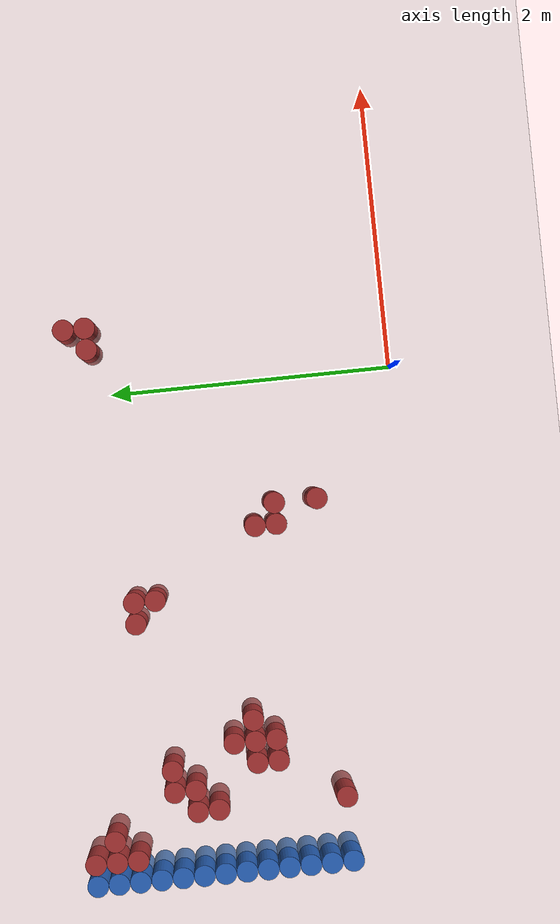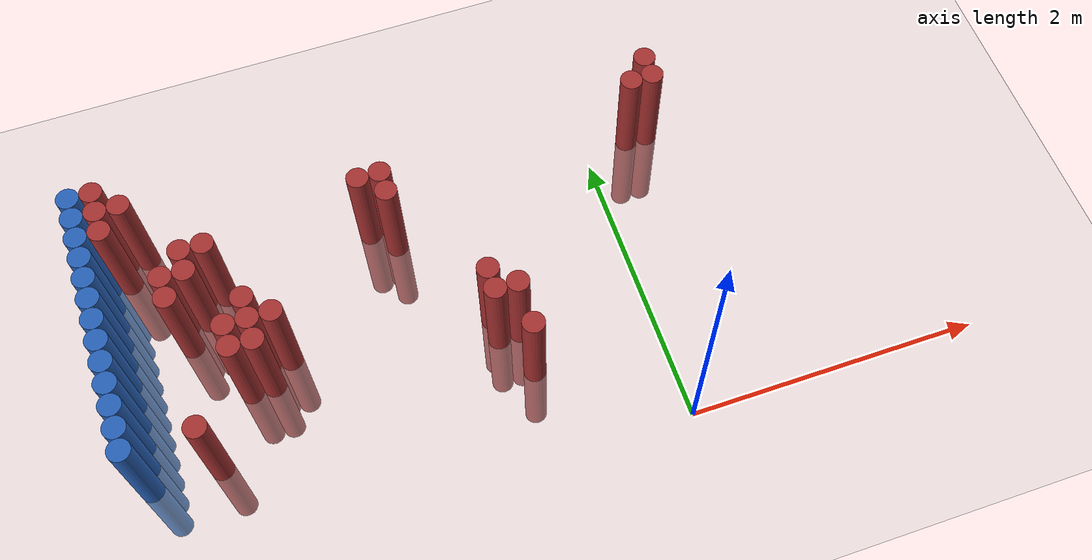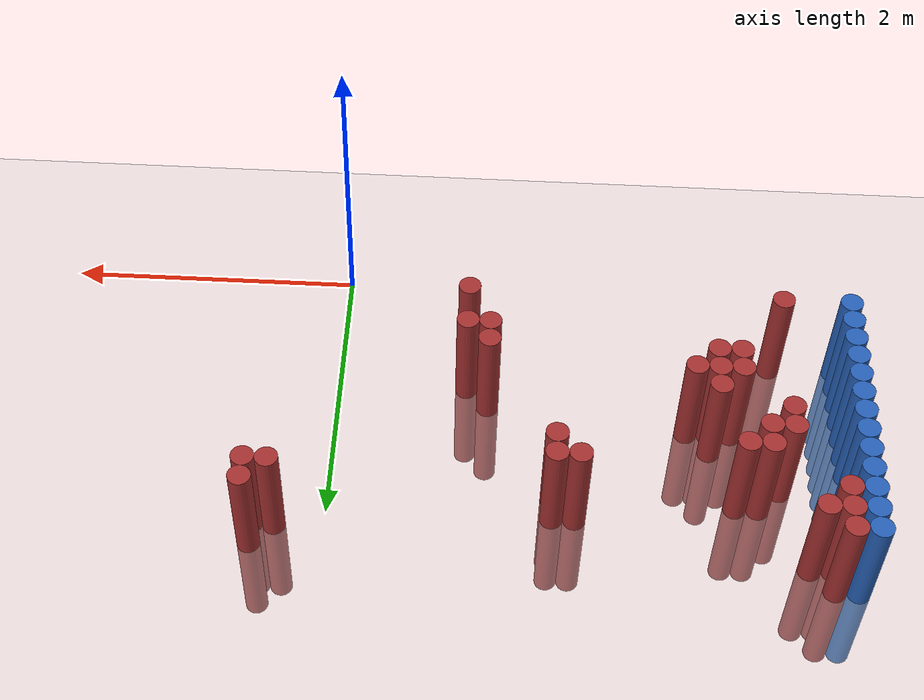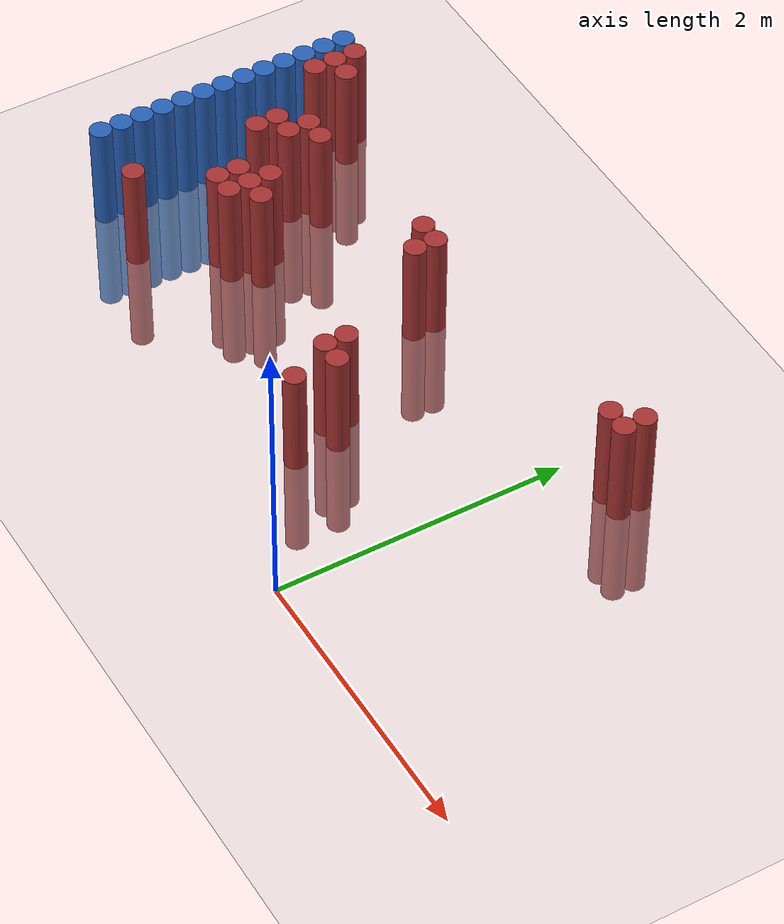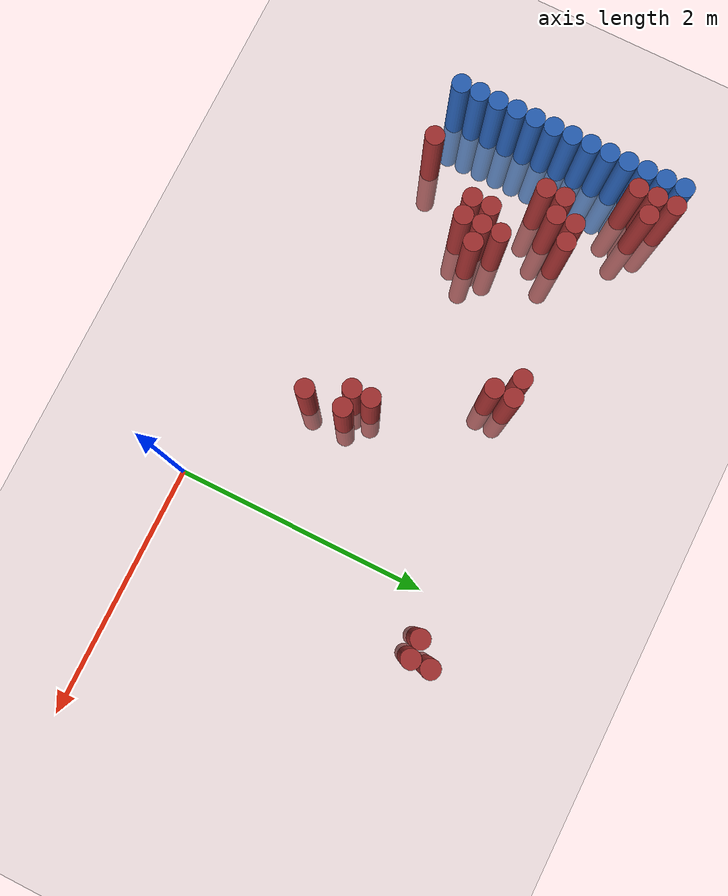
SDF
<sdf version="1.6">
 <world name="default">
  <model name="ground_plane">
   <static>1</static>
   <link name="link">
    <collision name="collision">
     <geometry><plane><normal>0 0 1</normal><size>100 100</size></plane></geometry>
     <surface><friction><ode><mu>100</mu><mu2>50</mu2></ode></friction></surface>
    </collision>
    <visual name="visual">
     <cast_shadows>0</cast_shadows>
     <geometry><plane><normal>0 0 1</normal><size>100 100</size></plane></geometry>
     <material>
      <script><uri>file://media/materials/scripts/gazebo.material</uri><name>Gazebo/Grey</name></script>
     </material>
    </visual>
   </link>
  </model>
  <model name="unit_cylinder_125">
   <static>1</static>
   <pose>-3.425000 0.775000 0.000000 0.000000 0.000000 0.000000</pose>
   <link name="link">
    <inertial>
     <mass>1</mass>
     <inertia><ixx>0.145833</ixx><ixy>0</ixy><ixz>0</ixz><iyy>0.145833</iyy><iyz>0</iyz><izz>0.125</izz></inertia>
    </inertial>
    <collision name="collision">
     <geometry><cylinder><radius>0.075000</radius><length>1.5</length></cylinder></geometry>
    </collision>
    <visual name="visual">
     <geometry><cylinder><radius>0.075000</radius><length>1.5</length></cylinder></geometry>
     <material>
      <ambient>0.152000 0.379000 0.720000 1</ambient>
      <diffuse>0.152000 0.379000 0.720000 1</diffuse>
     </material>
     <material>
      <script><name>Gazebo/Grey</name><uri>file://media/materials/scripts/gazebo.material</uri></script>
     </material>
    </visual>
   </link>
  </model>
  <model name="unit_cylinder_127">
   <static>1</static>
   <pose>-3.425000 0.925000 0.000000 0.000000 0.000000 0.000000</pose>
   <link name="link">
    <inertial>
     <mass>1</mass>
     <inertia><ixx>0.145833</ixx><ixy>0</ixy><ixz>0</ixz><iyy>0.145833</iyy><iyz>0</iyz><izz>0.125</izz></inertia>
    </inertial>
    <collision name="collision">
     <geometry><cylinder><radius>0.075000</radius><length>1.5</length></cylinder></geometry>
    </collision>
    <visual name="visual">
     <geometry><cylinder><radius>0.075000</radius><length>1.5</length></cylinder></geometry>
     <material>
      <ambient>0.152000 0.379000 0.720000 1</ambient>
      <diffuse>0.152000 0.379000 0.720000 1</diffuse>
     </material>
     <material>
      <script><name>Gazebo/Grey</name><uri>file://media/materials/scripts/gazebo.material</uri></script>
     </material>
    </visual>
   </link>
  </model>
  <model name="unit_cylinder_129">
   <static>1</static>
   <pose>-3.425000 1.075000 0.000000 0.000000 0.000000 0.000000</pose>
   <link name="link">
    <inertial>
     <mass>1</mass>
     <inertia><ixx>0.145833</ixx><ixy>0</ixy><ixz>0</ixz><iyy>0.145833</iyy><iyz>0</iyz><izz>0.125</izz></inertia>
    </inertial>
    <collision name="collision">
     <geometry><cylinder><radius>0.075000</radius><length>1.5</length></cylinder></geometry>
    </collision>
    <visual name="visual">
     <geometry><cylinder><radius>0.075000</radius><length>1.5</length></cylinder></geometry>
     <material>
      <ambient>0.152000 0.379000 0.720000 1</ambient>
      <diffuse>0.152000 0.379000 0.720000 1</diffuse>
     </material>
     <material>
      <script><name>Gazebo/Grey</name><uri>file://media/materials/scripts/gazebo.material</uri></script>
     </material>
    </visual>
   </link>
  </model>
  <model name="unit_cylinder_131">
   <static>1</static>
   <pose>-3.425000 1.225000 0.000000 0.000000 0.000000 0.000000</pose>
   <link name="link">
    <inertial>
     <mass>1</mass>
     <inertia><ixx>0.145833</ixx><ixy>0</ixy><ixz>0</ixz><iyy>0.145833</iyy><iyz>0</iyz><izz>0.125</izz></inertia>
    </inertial>
    <collision name="collision">
     <geometry><cylinder><radius>0.075000</radius><length>1.5</length></cylinder></geometry>
    </collision>
    <visual name="visual">
     <geometry><cylinder><radius>0.075000</radius><length>1.5</length></cylinder></geometry>
     <material>
      <ambient>0.152000 0.379000 0.720000 1</ambient>
      <diffuse>0.152000 0.379000 0.720000 1</diffuse>
     </material>
     <material>
      <script><name>Gazebo/Grey</name><uri>file://media/materials/scripts/gazebo.material</uri></script>
     </material>
    </visual>
   </link>
  </model>
  <model name="unit_cylinder_133">
   <static>1</static>
   <pose>-3.425000 1.375000 0.000000 0.000000 0.000000 0.000000</pose>
   <link name="link">
    <inertial>
     <mass>1</mass>
     <inertia><ixx>0.145833</ixx><ixy>0</ixy><ixz>0</ixz><iyy>0.145833</iyy><iyz>0</iyz><izz>0.125</izz></inertia>
    </inertial>
    <collision name="collision">
     <geometry><cylinder><radius>0.075000</radius><length>1.5</length></cylinder></geometry>
    </collision>
    <visual name="visual">
     <geometry><cylinder><radius>0.075000</radius><length>1.5</length></cylinder></geometry>
     <material>
      <ambient>0.152000 0.379000 0.720000 1</ambient>
      <diffuse>0.152000 0.379000 0.720000 1</diffuse>
     </material>
     <material>
      <script><name>Gazebo/Grey</name><uri>file://media/materials/scripts/gazebo.material</uri></script>
     </material>
    </visual>
   </link>
  </model>
  <model name="unit_cylinder_135">
   <static>1</static>
   <pose>-3.425000 1.525000 0.000000 0.000000 0.000000 0.000000</pose>
   <link name="link">
    <inertial>
     <mass>1</mass>
     <inertia><ixx>0.145833</ixx><ixy>0</ixy><ixz>0</ixz><iyy>0.145833</iyy><iyz>0</iyz><izz>0.125</izz></inertia>
    </inertial>
    <collision name="collision">
     <geometry><cylinder><radius>0.075000</radius><length>1.5</length></cylinder></geometry>
    </collision>
    <visual name="visual">
     <geometry><cylinder><radius>0.075000</radius><length>1.5</length></cylinder></geometry>
     <material>
      <ambient>0.152000 0.379000 0.720000 1</ambient>
      <diffuse>0.152000 0.379000 0.720000 1</diffuse>
     </material>
     <material>
      <script><name>Gazebo/Grey</name><uri>file://media/materials/scripts/gazebo.material</uri></script>
     </material>
    </visual>
   </link>
  </model>
  <model name="unit_cylinder_137">
   <static>1</static>
   <pose>-3.425000 1.675000 0.000000 0.000000 0.000000 0.000000</pose>
   <link name="link">
    <inertial>
     <mass>1</mass>
     <inertia><ixx>0.145833</ixx><ixy>0</ixy><ixz>0</ixz><iyy>0.145833</iyy><iyz>0</iyz><izz>0.125</izz></inertia>
    </inertial>
    <collision name="collision">
     <geometry><cylinder><radius>0.075000</radius><length>1.5</length></cylinder></geometry>
    </collision>
    <visual name="visual">
     <geometry><cylinder><radius>0.075000</radius><length>1.5</length></cylinder></geometry>
     <material>
      <ambient>0.152000 0.379000 0.720000 1</ambient>
      <diffuse>0.152000 0.379000 0.720000 1</diffuse>
     </material>
     <material>
      <script><name>Gazebo/Grey</name><uri>file://media/materials/scripts/gazebo.material</uri></script>
     </material>
    </visual>
   </link>
  </model>
  <model name="unit_cylinder_139">
   <static>1</static>
   <pose>-3.425000 1.825000 0.000000 0.000000 0.000000 0.000000</pose>
   <link name="link">
    <inertial>
     <mass>1</mass>
     <inertia><ixx>0.145833</ixx><ixy>0</ixy><ixz>0</ixz><iyy>0.145833</iyy><iyz>0</iyz><izz>0.125</izz></inertia>
    </inertial>
    <collision name="collision">
     <geometry><cylinder><radius>0.075000</radius><length>1.5</length></cylinder></geometry>
    </collision>
    <visual name="visual">
     <geometry><cylinder><radius>0.075000</radius><length>1.5</length></cylinder></geometry>
     <material>
      <ambient>0.152000 0.379000 0.720000 1</ambient>
      <diffuse>0.152000 0.379000 0.720000 1</diffuse>
     </material>
     <material>
      <script><name>Gazebo/Grey</name><uri>file://media/materials/scripts/gazebo.material</uri></script>
     </material>
    </visual>
   </link>
  </model>
  <model name="unit_cylinder_141">
   <static>1</static>
   <pose>-3.425000 1.975000 0.000000 0.000000 0.000000 0.000000</pose>
   <link name="link">
    <inertial>
     <mass>1</mass>
     <inertia><ixx>0.145833</ixx><ixy>0</ixy><ixz>0</ixz><iyy>0.145833</iyy><iyz>0</iyz><izz>0.125</izz></inertia>
    </inertial>
    <collision name="collision">
     <geometry><cylinder><radius>0.075000</radius><length>1.5</length></cylinder></geometry>
    </collision>
    <visual name="visual">
     <geometry><cylinder><radius>0.075000</radius><length>1.5</length></cylinder></geometry>
     <material>
      <ambient>0.152000 0.379000 0.720000 1</ambient>
      <diffuse>0.152000 0.379000 0.720000 1</diffuse>
     </material>
     <material>
      <script><name>Gazebo/Grey</name><uri>file://media/materials/scripts/gazebo.material</uri></script>
     </material>
    </visual>
   </link>
  </model>
  <model name="unit_cylinder_143">
   <static>1</static>
   <pose>-3.425000 2.125000 0.000000 0.000000 0.000000 0.000000</pose>
   <link name="link">
    <inertial>
     <mass>1</mass>
     <inertia><ixx>0.145833</ixx><ixy>0</ixy><ixz>0</ixz><iyy>0.145833</iyy><iyz>0</iyz><izz>0.125</izz></inertia>
    </inertial>
    <collision name="collision">
     <geometry><cylinder><radius>0.075000</radius><length>1.5</length></cylinder></geometry>
    </collision>
    <visual name="visual">
     <geometry><cylinder><radius>0.075000</radius><length>1.5</length></cylinder></geometry>
     <material>
      <ambient>0.152000 0.379000 0.720000 1</ambient>
      <diffuse>0.152000 0.379000 0.720000 1</diffuse>
     </material>
     <material>
      <script><name>Gazebo/Grey</name><uri>file://media/materials/scripts/gazebo.material</uri></script>
     </material>
    </visual>
   </link>
  </model>
  <model name="unit_cylinder_145">
   <static>1</static>
   <pose>-3.425000 2.275000 0.000000 0.000000 0.000000 0.000000</pose>
   <link name="link">
    <inertial>
     <mass>1</mass>
     <inertia><ixx>0.145833</ixx><ixy>0</ixy><ixz>0</ixz><iyy>0.145833</iyy><iyz>0</iyz><izz>0.125</izz></inertia>
    </inertial>
    <collision name="collision">
     <geometry><cylinder><radius>0.075000</radius><length>1.5</length></cylinder></geometry>
    </collision>
    <visual name="visual">
     <geometry><cylinder><radius>0.075000</radius><length>1.5</length></cylinder></geometry>
     <material>
      <ambient>0.152000 0.379000 0.720000 1</ambient>
      <diffuse>0.152000 0.379000 0.720000 1</diffuse>
     </material>
     <material>
      <script><name>Gazebo/Grey</name><uri>file://media/materials/scripts/gazebo.material</uri></script>
     </material>
    </visual>
   </link>
  </model>
  <model name="unit_cylinder_147">
   <static>1</static>
   <pose>-3.425000 2.425000 0.000000 0.000000 0.000000 0.000000</pose>
   <link name="link">
    <inertial>
     <mass>1</mass>
     <inertia><ixx>0.145833</ixx><ixy>0</ixy><ixz>0</ixz><iyy>0.145833</iyy><iyz>0</iyz><izz>0.125</izz></inertia>
    </inertial>
    <collision name="collision">
     <geometry><cylinder><radius>0.075000</radius><length>1.5</length></cylinder></geometry>
    </collision>
    <visual name="visual">
     <geometry><cylinder><radius>0.075000</radius><length>1.5</length></cylinder></geometry>
     <material>
      <ambient>0.152000 0.379000 0.720000 1</ambient>
      <diffuse>0.152000 0.379000 0.720000 1</diffuse>
     </material>
     <material>
      <script><name>Gazebo/Grey</name><uri>file://media/materials/scripts/gazebo.material</uri></script>
     </material>
    </visual>
   </link>
  </model>
  <model name="unit_cylinder_225">
   <static>1</static>
   <pose>-3.425000 0.625000 0.000000 0.000000 0.000000 0.000000</pose>
   <link name="link">
    <inertial>
     <mass>1</mass>
     <inertia><ixx>0.145833</ixx><ixy>0</ixy><ixz>0</ixz><iyy>0.145833</iyy><iyz>0</iyz><izz>0.125</izz></inertia>
    </inertial>
    <collision name="collision">
     <geometry><cylinder><radius>0.075000</radius><length>1.5</length></cylinder></geometry>
    </collision>
    <visual name="visual">
     <geometry><cylinder><radius>0.075000</radius><length>1.5</length></cylinder></geometry>
     <material>
      <ambient>0.152000 0.379000 0.720000 1</ambient>
      <diffuse>0.152000 0.379000 0.720000 1</diffuse>
     </material>
     <material>
      <script><name>Gazebo/Grey</name><uri>file://media/materials/scripts/gazebo.material</uri></script>
     </material>
    </visual>
   </link>
  </model>
  <model name="unit_cylinder_226">
   <static>1</static>
   <pose>-3.425000 0.775000 0.000000 0.000000 0.000000 0.000000</pose>
   <link name="link">
    <inertial>
     <mass>1</mass>
     <inertia><ixx>0.145833</ixx><ixy>0</ixy><ixz>0</ixz><iyy>0.145833</iyy><iyz>0</iyz><izz>0.125</izz></inertia>
    </inertial>
    <collision name="collision">
     <geometry><cylinder><radius>0.075000</radius><length>1.5</length></cylinder></geometry>
    </collision>
    <visual name="visual">
     <geometry><cylinder><radius>0.075000</radius><length>1.5</length></cylinder></geometry>
     <material>
      <ambient>0.152000 0.379000 0.720000 1</ambient>
      <diffuse>0.152000 0.379000 0.720000 1</diffuse>
     </material>
     <material>
      <script><name>Gazebo/Grey</name><uri>file://media/materials/scripts/gazebo.material</uri></script>
     </material>
    </visual>
   </link>
  </model>
  <model name="unit_cylinder_227">
   <static>1</static>
   <pose>-3.425000 0.925000 0.000000 0.000000 0.000000 0.000000</pose>
   <link name="link">
    <inertial>
     <mass>1</mass>
     <inertia><ixx>0.145833</ixx><ixy>0</ixy><ixz>0</ixz><iyy>0.145833</iyy><iyz>0</iyz><izz>0.125</izz></inertia>
    </inertial>
    <collision name="collision">
     <geometry><cylinder><radius>0.075000</radius><length>1.5</length></cylinder></geometry>
    </collision>
    <visual name="visual">
     <geometry><cylinder><radius>0.075000</radius><length>1.5</length></cylinder></geometry>
     <material>
      <ambient>0.152000 0.379000 0.720000 1</ambient>
      <diffuse>0.152000 0.379000 0.720000 1</diffuse>
     </material>
     <material>
      <script><name>Gazebo/Grey</name><uri>file://media/materials/scripts/gazebo.material</uri></script>
     </material>
    </visual>
   </link>
  </model>
  <model name="unit_cylinder_228">
   <static>1</static>
   <pose>-3.425000 1.075000 0.000000 0.000000 0.000000 0.000000</pose>
   <link name="link">
    <inertial>
     <mass>1</mass>
     <inertia><ixx>0.145833</ixx><ixy>0</ixy><ixz>0</ixz><iyy>0.145833</iyy><iyz>0</iyz><izz>0.125</izz></inertia>
    </inertial>
    <collision name="collision">
     <geometry><cylinder><radius>0.075000</radius><length>1.5</length></cylinder></geometry>
    </collision>
    <visual name="visual">
     <geometry><cylinder><radius>0.075000</radius><length>1.5</length></cylinder></geometry>
     <material>
      <ambient>0.152000 0.379000 0.720000 1</ambient>
      <diffuse>0.152000 0.379000 0.720000 1</diffuse>
     </material>
     <material>
      <script><name>Gazebo/Grey</name><uri>file://media/materials/scripts/gazebo.material</uri></script>
     </material>
    </visual>
   </link>
  </model>
  <model name="unit_cylinder_229">
   <static>1</static>
   <pose>-3.425000 1.225000 0.000000 0.000000 0.000000 0.000000</pose>
   <link name="link">
    <inertial>
     <mass>1</mass>
     <inertia><ixx>0.145833</ixx><ixy>0</ixy><ixz>0</ixz><iyy>0.145833</iyy><iyz>0</iyz><izz>0.125</izz></inertia>
    </inertial>
    <collision name="collision">
     <geometry><cylinder><radius>0.075000</radius><length>1.5</length></cylinder></geometry>
    </collision>
    <visual name="visual">
     <geometry><cylinder><radius>0.075000</radius><length>1.5</length></cylinder></geometry>
     <material>
      <ambient>0.152000 0.379000 0.720000 1</ambient>
      <diffuse>0.152000 0.379000 0.720000 1</diffuse>
     </material>
     <material>
      <script><name>Gazebo/Grey</name><uri>file://media/materials/scripts/gazebo.material</uri></script>
     </material>
    </visual>
   </link>
  </model>
  <model name="unit_cylinder_230">
   <static>1</static>
   <pose>-3.425000 1.375000 0.000000 0.000000 0.000000 0.000000</pose>
   <link name="link">
    <inertial>
     <mass>1</mass>
     <inertia><ixx>0.145833</ixx><ixy>0</ixy><ixz>0</ixz><iyy>0.145833</iyy><iyz>0</iyz><izz>0.125</izz></inertia>
    </inertial>
    <collision name="collision">
     <geometry><cylinder><radius>0.075000</radius><length>1.5</length></cylinder></geometry>
    </collision>
    <visual name="visual">
     <geometry><cylinder><radius>0.075000</radius><length>1.5</length></cylinder></geometry>
     <material>
      <ambient>0.152000 0.379000 0.720000 1</ambient>
      <diffuse>0.152000 0.379000 0.720000 1</diffuse>
     </material>
     <material>
      <script><name>Gazebo/Grey</name><uri>file://media/materials/scripts/gazebo.material</uri></script>
     </material>
    </visual>
   </link>
  </model>
  <model name="unit_cylinder_231">
   <static>1</static>
   <pose>-3.425000 1.525000 0.000000 0.000000 0.000000 0.000000</pose>
   <link name="link">
    <inertial>
     <mass>1</mass>
     <inertia><ixx>0.145833</ixx><ixy>0</ixy><ixz>0</ixz><iyy>0.145833</iyy><iyz>0</iyz><izz>0.125</izz></inertia>
    </inertial>
    <collision name="collision">
     <geometry><cylinder><radius>0.075000</radius><length>1.5</length></cylinder></geometry>
    </collision>
    <visual name="visual">
     <geometry><cylinder><radius>0.075000</radius><length>1.5</length></cylinder></geometry>
     <material>
      <ambient>0.152000 0.379000 0.720000 1</ambient>
      <diffuse>0.152000 0.379000 0.720000 1</diffuse>
     </material>
     <material>
      <script><name>Gazebo/Grey</name><uri>file://media/materials/scripts/gazebo.material</uri></script>
     </material>
    </visual>
   </link>
  </model>
  <model name="unit_cylinder_232">
   <static>1</static>
   <pose>-3.425000 1.675000 0.000000 0.000000 0.000000 0.000000</pose>
   <link name="link">
    <inertial>
     <mass>1</mass>
     <inertia><ixx>0.145833</ixx><ixy>0</ixy><ixz>0</ixz><iyy>0.145833</iyy><iyz>0</iyz><izz>0.125</izz></inertia>
    </inertial>
    <collision name="collision">
     <geometry><cylinder><radius>0.075000</radius><length>1.5</length></cylinder></geometry>
    </collision>
    <visual name="visual">
     <geometry><cylinder><radius>0.075000</radius><length>1.5</length></cylinder></geometry>
     <material>
      <ambient>0.152000 0.379000 0.720000 1</ambient>
      <diffuse>0.152000 0.379000 0.720000 1</diffuse>
     </material>
     <material>
      <script><name>Gazebo/Grey</name><uri>file://media/materials/scripts/gazebo.material</uri></script>
     </material>
    </visual>
   </link>
  </model>
  <model name="unit_cylinder_233">
   <static>1</static>
   <pose>-3.425000 1.825000 0.000000 0.000000 0.000000 0.000000</pose>
   <link name="link">
    <inertial>
     <mass>1</mass>
     <inertia><ixx>0.145833</ixx><ixy>0</ixy><ixz>0</ixz><iyy>0.145833</iyy><iyz>0</iyz><izz>0.125</izz></inertia>
    </inertial>
    <collision name="collision">
     <geometry><cylinder><radius>0.075000</radius><length>1.5</length></cylinder></geometry>
    </collision>
    <visual name="visual">
     <geometry><cylinder><radius>0.075000</radius><length>1.5</length></cylinder></geometry>
     <material>
      <ambient>0.152000 0.379000 0.720000 1</ambient>
      <diffuse>0.152000 0.379000 0.720000 1</diffuse>
     </material>
     <material>
      <script><name>Gazebo/Grey</name><uri>file://media/materials/scripts/gazebo.material</uri></script>
     </material>
    </visual>
   </link>
  </model>
  <model name="unit_cylinder_234">
   <static>1</static>
   <pose>-3.425000 1.975000 0.000000 0.000000 0.000000 0.000000</pose>
   <link name="link">
    <inertial>
     <mass>1</mass>
     <inertia><ixx>0.145833</ixx><ixy>0</ixy><ixz>0</ixz><iyy>0.145833</iyy><iyz>0</iyz><izz>0.125</izz></inertia>
    </inertial>
    <collision name="collision">
     <geometry><cylinder><radius>0.075000</radius><length>1.5</length></cylinder></geometry>
    </collision>
    <visual name="visual">
     <geometry><cylinder><radius>0.075000</radius><length>1.5</length></cylinder></geometry>
     <material>
      <ambient>0.152000 0.379000 0.720000 1</ambient>
      <diffuse>0.152000 0.379000 0.720000 1</diffuse>
     </material>
     <material>
      <script><name>Gazebo/Grey</name><uri>file://media/materials/scripts/gazebo.material</uri></script>
     </material>
    </visual>
   </link>
  </model>
  <model name="unit_cylinder_235">
   <static>1</static>
   <pose>-3.425000 2.125000 0.000000 0.000000 0.000000 0.000000</pose>
   <link name="link">
    <inertial>
     <mass>1</mass>
     <inertia><ixx>0.145833</ixx><ixy>0</ixy><ixz>0</ixz><iyy>0.145833</iyy><iyz>0</iyz><izz>0.125</izz></inertia>
    </inertial>
    <collision name="collision">
     <geometry><cylinder><radius>0.075000</radius><length>1.5</length></cylinder></geometry>
    </collision>
    <visual name="visual">
     <geometry><cylinder><radius>0.075000</radius><length>1.5</length></cylinder></geometry>
     <material>
      <ambient>0.152000 0.379000 0.720000 1</ambient>
      <diffuse>0.152000 0.379000 0.720000 1</diffuse>
     </material>
     <material>
      <script><name>Gazebo/Grey</name><uri>file://media/materials/scripts/gazebo.material</uri></script>
     </material>
    </visual>
   </link>
  </model>
  <model name="unit_cylinder_236">
   <static>1</static>
   <pose>-3.425000 2.275000 0.000000 0.000000 0.000000 0.000000</pose>
   <link name="link">
    <inertial>
     <mass>1</mass>
     <inertia><ixx>0.145833</ixx><ixy>0</ixy><ixz>0</ixz><iyy>0.145833</iyy><iyz>0</iyz><izz>0.125</izz></inertia>
    </inertial>
    <collision name="collision">
     <geometry><cylinder><radius>0.075000</radius><length>1.5</length></cylinder></geometry>
    </collision>
    <visual name="visual">
     <geometry><cylinder><radius>0.075000</radius><length>1.5</length></cylinder></geometry>
     <material>
      <ambient>0.152000 0.379000 0.720000 1</ambient>
      <diffuse>0.152000 0.379000 0.720000 1</diffuse>
     </material>
     <material>
      <script><name>Gazebo/Grey</name><uri>file://media/materials/scripts/gazebo.material</uri></script>
     </material>
    </visual>
   </link>
  </model>
  <model name="unit_cylinder_237">
   <static>1</static>
   <pose>-3.425000 2.425000 0.000000 0.000000 0.000000 0.000000</pose>
   <link name="link">
    <inertial>
     <mass>1</mass>
     <inertia><ixx>0.145833</ixx><ixy>0</ixy><ixz>0</ixz><iyy>0.145833</iyy><iyz>0</iyz><izz>0.125</izz></inertia>
    </inertial>
    <collision name="collision">
     <geometry><cylinder><radius>0.075000</radius><length>1.5</length></cylinder></geometry>
    </collision>
    <visual name="visual">
     <geometry><cylinder><radius>0.075000</radius><length>1.5</length></cylinder></geometry>
     <material>
      <ambient>0.152000 0.379000 0.720000 1</ambient>
      <diffuse>0.152000 0.379000 0.720000 1</diffuse>
     </material>
     <material>
      <script><name>Gazebo/Grey</name><uri>file://media/materials/scripts/gazebo.material</uri></script>
     </material>
    </visual>
   </link>
  </model>
  <model name="unit_cylinder_264">
   <static>1</static>
   <pose>-3.275000 2.125000 0.000000 0.000000 0.000000 0.000000</pose>
   <link name="link">
    <inertial>
     <mass>1</mass>
     <inertia><ixx>0.145833</ixx><ixy>0</ixy><ixz>0</ixz><iyy>0.145833</iyy><iyz>0</iyz><izz>0.125</izz></inertia>
    </inertial>
    <collision name="collision">
     <geometry><cylinder><radius>0.075000</radius><length>1.5</length></cylinder></geometry>
    </collision>
    <visual name="visual">
     <geometry><cylinder><radius>0.075000</radius><length>1.5</length></cylinder></geometry>
     <material>
      <ambient>0.648000 0.192000 0.192000 1</ambient>
      <diffuse>0.648000 0.192000 0.192000 1</diffuse>
     </material>
     <material>
      <script><name>Gazebo/Grey</name><uri>file://media/materials/scripts/gazebo.material</uri></script>
     </material>
    </visual>
   </link>
  </model>
  <model name="unit_cylinder_265">
   <static>1</static>
   <pose>-3.275000 2.275000 0.000000 0.000000 0.000000 0.000000</pose>
   <link name="link">
    <inertial>
     <mass>1</mass>
     <inertia><ixx>0.145833</ixx><ixy>0</ixy><ixz>0</ixz><iyy>0.145833</iyy><iyz>0</iyz><izz>0.125</izz></inertia>
    </inertial>
    <collision name="collision">
     <geometry><cylinder><radius>0.075000</radius><length>1.5</length></cylinder></geometry>
    </collision>
    <visual name="visual">
     <geometry><cylinder><radius>0.075000</radius><length>1.5</length></cylinder></geometry>
     <material>
      <ambient>0.648000 0.192000 0.192000 1</ambient>
      <diffuse>0.648000 0.192000 0.192000 1</diffuse>
     </material>
     <material>
      <script><name>Gazebo/Grey</name><uri>file://media/materials/scripts/gazebo.material</uri></script>
     </material>
    </visual>
   </link>
  </model>
  <model name="unit_cylinder_266">
   <static>1</static>
   <pose>-3.275000 2.425000 0.000000 0.000000 0.000000 0.000000</pose>
   <link name="link">
    <inertial>
     <mass>1</mass>
     <inertia><ixx>0.145833</ixx><ixy>0</ixy><ixz>0</ixz><iyy>0.145833</iyy><iyz>0</iyz><izz>0.125</izz></inertia>
    </inertial>
    <collision name="collision">
     <geometry><cylinder><radius>0.075000</radius><length>1.5</length></cylinder></geometry>
    </collision>
    <visual name="visual">
     <geometry><cylinder><radius>0.075000</radius><length>1.5</length></cylinder></geometry>
     <material>
      <ambient>0.648000 0.192000 0.192000 1</ambient>
      <diffuse>0.648000 0.192000 0.192000 1</diffuse>
     </material>
     <material>
      <script><name>Gazebo/Grey</name><uri>file://media/materials/scripts/gazebo.material</uri></script>
     </material>
    </visual>
   </link>
  </model>
  <model name="unit_cylinder_282">
   <static>1</static>
   <pose>-3.125000 2.275000 0.000000 0.000000 0.000000 0.000000</pose>
   <link name="link">
    <inertial>
     <mass>1</mass>
     <inertia><ixx>0.145833</ixx><ixy>0</ixy><ixz>0</ixz><iyy>0.145833</iyy><iyz>0</iyz><izz>0.125</izz></inertia>
    </inertial>
    <collision name="collision">
     <geometry><cylinder><radius>0.075000</radius><length>1.5</length></cylinder></geometry>
    </collision>
    <visual name="visual">
     <geometry><cylinder><radius>0.075000</radius><length>1.5</length></cylinder></geometry>
     <material>
      <ambient>0.648000 0.192000 0.192000 1</ambient>
      <diffuse>0.648000 0.192000 0.192000 1</diffuse>
     </material>
     <material>
      <script><name>Gazebo/Grey</name><uri>file://media/materials/scripts/gazebo.material</uri></script>
     </material>
    </visual>
   </link>
  </model>
  <model name="unit_cylinder_290">
   <static>1</static>
   <pose>-2.975000 0.625000 0.000000 0.000000 0.000000 0.000000</pose>
   <link name="link">
    <inertial>
     <mass>1</mass>
     <inertia><ixx>0.145833</ixx><ixy>0</ixy><ixz>0</ixz><iyy>0.145833</iyy><iyz>0</iyz><izz>0.125</izz></inertia>
    </inertial>
    <collision name="collision">
     <geometry><cylinder><radius>0.075000</radius><length>1.5</length></cylinder></geometry>
    </collision>
    <visual name="visual">
     <geometry><cylinder><radius>0.075000</radius><length>1.5</length></cylinder></geometry>
     <material>
      <ambient>0.648000 0.192000 0.192000 1</ambient>
      <diffuse>0.648000 0.192000 0.192000 1</diffuse>
     </material>
     <material>
      <script><name>Gazebo/Grey</name><uri>file://media/materials/scripts/gazebo.material</uri></script>
     </material>
    </visual>
   </link>
  </model>
  <model name="unit_cylinder_291">
   <static>1</static>
   <pose>-2.975000 1.525000 0.000000 0.000000 0.000000 0.000000</pose>
   <link name="link">
    <inertial>
     <mass>1</mass>
     <inertia><ixx>0.145833</ixx><ixy>0</ixy><ixz>0</ixz><iyy>0.145833</iyy><iyz>0</iyz><izz>0.125</izz></inertia>
    </inertial>
    <collision name="collision">
     <geometry><cylinder><radius>0.075000</radius><length>1.5</length></cylinder></geometry>
    </collision>
    <visual name="visual">
     <geometry><cylinder><radius>0.075000</radius><length>1.5</length></cylinder></geometry>
     <material>
      <ambient>0.648000 0.192000 0.192000 1</ambient>
      <diffuse>0.648000 0.192000 0.192000 1</diffuse>
     </material>
     <material>
      <script><name>Gazebo/Grey</name><uri>file://media/materials/scripts/gazebo.material</uri></script>
     </material>
    </visual>
   </link>
  </model>
  <model name="unit_cylinder_292">
   <static>1</static>
   <pose>-2.975000 1.675000 0.000000 0.000000 0.000000 0.000000</pose>
   <link name="link">
    <inertial>
     <mass>1</mass>
     <inertia><ixx>0.145833</ixx><ixy>0</ixy><ixz>0</ixz><iyy>0.145833</iyy><iyz>0</iyz><izz>0.125</izz></inertia>
    </inertial>
    <collision name="collision">
     <geometry><cylinder><radius>0.075000</radius><length>1.5</length></cylinder></geometry>
    </collision>
    <visual name="visual">
     <geometry><cylinder><radius>0.075000</radius><length>1.5</length></cylinder></geometry>
     <material>
      <ambient>0.648000 0.192000 0.192000 1</ambient>
      <diffuse>0.648000 0.192000 0.192000 1</diffuse>
     </material>
     <material>
      <script><name>Gazebo/Grey</name><uri>file://media/materials/scripts/gazebo.material</uri></script>
     </material>
    </visual>
   </link>
  </model>
  <model name="unit_cylinder_294">
   <static>1</static>
   <pose>-2.825000 1.675000 0.000000 0.000000 0.000000 0.000000</pose>
   <link name="link">
    <inertial>
     <mass>1</mass>
     <inertia><ixx>0.145833</ixx><ixy>0</ixy><ixz>0</ixz><iyy>0.145833</iyy><iyz>0</iyz><izz>0.125</izz></inertia>
    </inertial>
    <collision name="collision">
     <geometry><cylinder><radius>0.075000</radius><length>1.5</length></cylinder></geometry>
    </collision>
    <visual name="visual">
     <geometry><cylinder><radius>0.075000</radius><length>1.5</length></cylinder></geometry>
     <material>
      <ambient>0.648000 0.192000 0.192000 1</ambient>
      <diffuse>0.648000 0.192000 0.192000 1</diffuse>
     </material>
     <material>
      <script><name>Gazebo/Grey</name><uri>file://media/materials/scripts/gazebo.material</uri></script>
     </material>
    </visual>
   </link>
  </model>
  <model name="unit_cylinder_295">
   <static>1</static>
   <pose>-2.825000 1.825000 0.000000 0.000000 0.000000 0.000000</pose>
   <link name="link">
    <inertial>
     <mass>1</mass>
     <inertia><ixx>0.145833</ixx><ixy>0</ixy><ixz>0</ixz><iyy>0.145833</iyy><iyz>0</iyz><izz>0.125</izz></inertia>
    </inertial>
    <collision name="collision">
     <geometry><cylinder><radius>0.075000</radius><length>1.5</length></cylinder></geometry>
    </collision>
    <visual name="visual">
     <geometry><cylinder><radius>0.075000</radius><length>1.5</length></cylinder></geometry>
     <material>
      <ambient>0.648000 0.192000 0.192000 1</ambient>
      <diffuse>0.648000 0.192000 0.192000 1</diffuse>
     </material>
     <material>
      <script><name>Gazebo/Grey</name><uri>file://media/materials/scripts/gazebo.material</uri></script>
     </material>
    </visual>
   </link>
  </model>
  <model name="unit_cylinder_301">
   <static>1</static>
   <pose>-2.675000 1.075000 0.000000 0.000000 0.000000 0.000000</pose>
   <link name="link">
    <inertial>
     <mass>1</mass>
     <inertia><ixx>0.145833</ixx><ixy>0</ixy><ixz>0</ixz><iyy>0.145833</iyy><iyz>0</iyz><izz>0.125</izz></inertia>
    </inertial>
    <collision name="collision">
     <geometry><cylinder><radius>0.075000</radius><length>1.5</length></cylinder></geometry>
    </collision>
    <visual name="visual">
     <geometry><cylinder><radius>0.075000</radius><length>1.5</length></cylinder></geometry>
     <material>
      <ambient>0.648000 0.192000 0.192000 1</ambient>
      <diffuse>0.648000 0.192000 0.192000 1</diffuse>
     </material>
     <material>
      <script><name>Gazebo/Grey</name><uri>file://media/materials/scripts/gazebo.material</uri></script>
     </material>
    </visual>
   </link>
  </model>
  <model name="unit_cylinder_302">
   <static>1</static>
   <pose>-2.675000 1.225000 0.000000 0.000000 0.000000 0.000000</pose>
   <link name="link">
    <inertial>
     <mass>1</mass>
     <inertia><ixx>0.145833</ixx><ixy>0</ixy><ixz>0</ixz><iyy>0.145833</iyy><iyz>0</iyz><izz>0.125</izz></inertia>
    </inertial>
    <collision name="collision">
     <geometry><cylinder><radius>0.075000</radius><length>1.5</length></cylinder></geometry>
    </collision>
    <visual name="visual">
     <geometry><cylinder><radius>0.075000</radius><length>1.5</length></cylinder></geometry>
     <material>
      <ambient>0.648000 0.192000 0.192000 1</ambient>
      <diffuse>0.648000 0.192000 0.192000 1</diffuse>
     </material>
     <material>
      <script><name>Gazebo/Grey</name><uri>file://media/materials/scripts/gazebo.material</uri></script>
     </material>
    </visual>
   </link>
  </model>
  <model name="unit_cylinder_303">
   <static>1</static>
   <pose>-2.675000 1.825000 0.000000 0.000000 0.000000 0.000000</pose>
   <link name="link">
    <inertial>
     <mass>1</mass>
     <inertia><ixx>0.145833</ixx><ixy>0</ixy><ixz>0</ixz><iyy>0.145833</iyy><iyz>0</iyz><izz>0.125</izz></inertia>
    </inertial>
    <collision name="collision">
     <geometry><cylinder><radius>0.075000</radius><length>1.5</length></cylinder></geometry>
    </collision>
    <visual name="visual">
     <geometry><cylinder><radius>0.075000</radius><length>1.5</length></cylinder></geometry>
     <material>
      <ambient>0.648000 0.192000 0.192000 1</ambient>
      <diffuse>0.648000 0.192000 0.192000 1</diffuse>
     </material>
     <material>
      <script><name>Gazebo/Grey</name><uri>file://media/materials/scripts/gazebo.material</uri></script>
     </material>
    </visual>
   </link>
  </model>
  <model name="unit_cylinder_308">
   <static>1</static>
   <pose>-2.525000 1.075000 0.000000 0.000000 0.000000 0.000000</pose>
   <link name="link">
    <inertial>
     <mass>1</mass>
     <inertia><ixx>0.145833</ixx><ixy>0</ixy><ixz>0</ixz><iyy>0.145833</iyy><iyz>0</iyz><izz>0.125</izz></inertia>
    </inertial>
    <collision name="collision">
     <geometry><cylinder><radius>0.075000</radius><length>1.5</length></cylinder></geometry>
    </collision>
    <visual name="visual">
     <geometry><cylinder><radius>0.075000</radius><length>1.5</length></cylinder></geometry>
     <material>
      <ambient>0.648000 0.192000 0.192000 1</ambient>
      <diffuse>0.648000 0.192000 0.192000 1</diffuse>
     </material>
     <material>
      <script><name>Gazebo/Grey</name><uri>file://media/materials/scripts/gazebo.material</uri></script>
     </material>
    </visual>
   </link>
  </model>
  <model name="unit_cylinder_309">
   <static>1</static>
   <pose>-2.525000 1.225000 0.000000 0.000000 0.000000 0.000000</pose>
   <link name="link">
    <inertial>
     <mass>1</mass>
     <inertia><ixx>0.145833</ixx><ixy>0</ixy><ixz>0</ixz><iyy>0.145833</iyy><iyz>0</iyz><izz>0.125</izz></inertia>
    </inertial>
    <collision name="collision">
     <geometry><cylinder><radius>0.075000</radius><length>1.5</length></cylinder></geometry>
    </collision>
    <visual name="visual">
     <geometry><cylinder><radius>0.075000</radius><length>1.5</length></cylinder></geometry>
     <material>
      <ambient>0.648000 0.192000 0.192000 1</ambient>
      <diffuse>0.648000 0.192000 0.192000 1</diffuse>
     </material>
     <material>
      <script><name>Gazebo/Grey</name><uri>file://media/materials/scripts/gazebo.material</uri></script>
     </material>
    </visual>
   </link>
  </model>
  <model name="unit_cylinder_310">
   <static>1</static>
   <pose>-2.525000 1.375000 0.000000 0.000000 0.000000 0.000000</pose>
   <link name="link">
    <inertial>
     <mass>1</mass>
     <inertia><ixx>0.145833</ixx><ixy>0</ixy><ixz>0</ixz><iyy>0.145833</iyy><iyz>0</iyz><izz>0.125</izz></inertia>
    </inertial>
    <collision name="collision">
     <geometry><cylinder><radius>0.075000</radius><length>1.5</length></cylinder></geometry>
    </collision>
    <visual name="visual">
     <geometry><cylinder><radius>0.075000</radius><length>1.5</length></cylinder></geometry>
     <material>
      <ambient>0.648000 0.192000 0.192000 1</ambient>
      <diffuse>0.648000 0.192000 0.192000 1</diffuse>
     </material>
     <material>
      <script><name>Gazebo/Grey</name><uri>file://media/materials/scripts/gazebo.material</uri></script>
     </material>
    </visual>
   </link>
  </model>
  <model name="unit_cylinder_316">
   <static>1</static>
   <pose>-2.375000 1.225000 0.000000 0.000000 0.000000 0.000000</pose>
   <link name="link">
    <inertial>
     <mass>1</mass>
     <inertia><ixx>0.145833</ixx><ixy>0</ixy><ixz>0</ixz><iyy>0.145833</iyy><iyz>0</iyz><izz>0.125</izz></inertia>
    </inertial>
    <collision name="collision">
     <geometry><cylinder><radius>0.075000</radius><length>1.5</length></cylinder></geometry>
    </collision>
    <visual name="visual">
     <geometry><cylinder><radius>0.075000</radius><length>1.5</length></cylinder></geometry>
     <material>
      <ambient>0.648000 0.192000 0.192000 1</ambient>
      <diffuse>0.648000 0.192000 0.192000 1</diffuse>
     </material>
     <material>
      <script><name>Gazebo/Grey</name><uri>file://media/materials/scripts/gazebo.material</uri></script>
     </material>
    </visual>
   </link>
  </model>
  <model name="unit_cylinder_321">
   <static>1</static>
   <pose>-1.625000 1.975000 0.000000 0.000000 0.000000 0.000000</pose>
   <link name="link">
    <inertial>
     <mass>1</mass>
     <inertia><ixx>0.145833</ixx><ixy>0</ixy><ixz>0</ixz><iyy>0.145833</iyy><iyz>0</iyz><izz>0.125</izz></inertia>
    </inertial>
    <collision name="collision">
     <geometry><cylinder><radius>0.075000</radius><length>1.5</length></cylinder></geometry>
    </collision>
    <visual name="visual">
     <geometry><cylinder><radius>0.075000</radius><length>1.5</length></cylinder></geometry>
     <material>
      <ambient>0.648000 0.192000 0.192000 1</ambient>
      <diffuse>0.648000 0.192000 0.192000 1</diffuse>
     </material>
     <material>
      <script><name>Gazebo/Grey</name><uri>file://media/materials/scripts/gazebo.material</uri></script>
     </material>
    </visual>
   </link>
  </model>
  <model name="unit_cylinder_322">
   <static>1</static>
   <pose>-1.475000 1.825000 0.000000 0.000000 0.000000 0.000000</pose>
   <link name="link">
    <inertial>
     <mass>1</mass>
     <inertia><ixx>0.145833</ixx><ixy>0</ixy><ixz>0</ixz><iyy>0.145833</iyy><iyz>0</iyz><izz>0.125</izz></inertia>
    </inertial>
    <collision name="collision">
     <geometry><cylinder><radius>0.075000</radius><length>1.5</length></cylinder></geometry>
    </collision>
    <visual name="visual">
     <geometry><cylinder><radius>0.075000</radius><length>1.5</length></cylinder></geometry>
     <material>
      <ambient>0.648000 0.192000 0.192000 1</ambient>
      <diffuse>0.648000 0.192000 0.192000 1</diffuse>
     </material>
     <material>
      <script><name>Gazebo/Grey</name><uri>file://media/materials/scripts/gazebo.material</uri></script>
     </material>
    </visual>
   </link>
  </model>
  <model name="unit_cylinder_323">
   <static>1</static>
   <pose>-1.475000 1.975000 0.000000 0.000000 0.000000 0.000000</pose>
   <link name="link">
    <inertial>
     <mass>1</mass>
     <inertia><ixx>0.145833</ixx><ixy>0</ixy><ixz>0</ixz><iyy>0.145833</iyy><iyz>0</iyz><izz>0.125</izz></inertia>
    </inertial>
    <collision name="collision">
     <geometry><cylinder><radius>0.075000</radius><length>1.5</length></cylinder></geometry>
    </collision>
    <visual name="visual">
     <geometry><cylinder><radius>0.075000</radius><length>1.5</length></cylinder></geometry>
     <material>
      <ambient>0.648000 0.192000 0.192000 1</ambient>
      <diffuse>0.648000 0.192000 0.192000 1</diffuse>
     </material>
     <material>
      <script><name>Gazebo/Grey</name><uri>file://media/materials/scripts/gazebo.material</uri></script>
     </material>
    </visual>
   </link>
  </model>
  <model name="unit_cylinder_338">
   <static>1</static>
   <pose>-1.025000 0.925000 0.000000 0.000000 0.000000 0.000000</pose>
   <link name="link">
    <inertial>
     <mass>1</mass>
     <inertia><ixx>0.145833</ixx><ixy>0</ixy><ixz>0</ixz><iyy>0.145833</iyy><iyz>0</iyz><izz>0.125</izz></inertia>
    </inertial>
    <collision name="collision">
     <geometry><cylinder><radius>0.075000</radius><length>1.5</length></cylinder></geometry>
    </collision>
    <visual name="visual">
     <geometry><cylinder><radius>0.075000</radius><length>1.5</length></cylinder></geometry>
     <material>
      <ambient>0.648000 0.192000 0.192000 1</ambient>
      <diffuse>0.648000 0.192000 0.192000 1</diffuse>
     </material>
     <material>
      <script><name>Gazebo/Grey</name><uri>file://media/materials/scripts/gazebo.material</uri></script>
     </material>
    </visual>
   </link>
  </model>
  <model name="unit_cylinder_339">
   <static>1</static>
   <pose>-1.025000 1.075000 0.000000 0.000000 0.000000 0.000000</pose>
   <link name="link">
    <inertial>
     <mass>1</mass>
     <inertia><ixx>0.145833</ixx><ixy>0</ixy><ixz>0</ixz><iyy>0.145833</iyy><iyz>0</iyz><izz>0.125</izz></inertia>
    </inertial>
    <collision name="collision">
     <geometry><cylinder><radius>0.075000</radius><length>1.5</length></cylinder></geometry>
    </collision>
    <visual name="visual">
     <geometry><cylinder><radius>0.075000</radius><length>1.5</length></cylinder></geometry>
     <material>
      <ambient>0.648000 0.192000 0.192000 1</ambient>
      <diffuse>0.648000 0.192000 0.192000 1</diffuse>
     </material>
     <material>
      <script><name>Gazebo/Grey</name><uri>file://media/materials/scripts/gazebo.material</uri></script>
     </material>
    </visual>
   </link>
  </model>
  <model name="unit_cylinder_351">
   <static>1</static>
   <pose>-0.875000 0.625000 0.000000 0.000000 0.000000 0.000000</pose>
   <link name="link">
    <inertial>
     <mass>1</mass>
     <inertia><ixx>0.145833</ixx><ixy>0</ixy><ixz>0</ixz><iyy>0.145833</iyy><iyz>0</iyz><izz>0.125</izz></inertia>
    </inertial>
    <collision name="collision">
     <geometry><cylinder><radius>0.075000</radius><length>1.5</length></cylinder></geometry>
    </collision>
    <visual name="visual">
     <geometry><cylinder><radius>0.075000</radius><length>1.5</length></cylinder></geometry>
     <material>
      <ambient>0.648000 0.192000 0.192000 1</ambient>
      <diffuse>0.648000 0.192000 0.192000 1</diffuse>
     </material>
     <material>
      <script><name>Gazebo/Grey</name><uri>file://media/materials/scripts/gazebo.material</uri></script>
     </material>
    </visual>
   </link>
  </model>
  <model name="unit_cylinder_352">
   <static>1</static>
   <pose>-0.875000 0.925000 0.000000 0.000000 0.000000 0.000000</pose>
   <link name="link">
    <inertial>
     <mass>1</mass>
     <inertia><ixx>0.145833</ixx><ixy>0</ixy><ixz>0</ixz><iyy>0.145833</iyy><iyz>0</iyz><izz>0.125</izz></inertia>
    </inertial>
    <collision name="collision">
     <geometry><cylinder><radius>0.075000</radius><length>1.5</length></cylinder></geometry>
    </collision>
    <visual name="visual">
     <geometry><cylinder><radius>0.075000</radius><length>1.5</length></cylinder></geometry>
     <material>
      <ambient>0.648000 0.192000 0.192000 1</ambient>
      <diffuse>0.648000 0.192000 0.192000 1</diffuse>
     </material>
     <material>
      <script><name>Gazebo/Grey</name><uri>file://media/materials/scripts/gazebo.material</uri></script>
     </material>
    </visual>
   </link>
  </model>
  <model name="unit_cylinder_364">
   <static>1</static>
   <pose>0.325000 2.125000 0.000000 0.000000 0.000000 0.000000</pose>
   <link name="link">
    <inertial>
     <mass>1</mass>
     <inertia><ixx>0.145833</ixx><ixy>0</ixy><ixz>0</ixz><iyy>0.145833</iyy><iyz>0</iyz><izz>0.125</izz></inertia>
    </inertial>
    <collision name="collision">
     <geometry><cylinder><radius>0.075000</radius><length>1.5</length></cylinder></geometry>
    </collision>
    <visual name="visual">
     <geometry><cylinder><radius>0.075000</radius><length>1.5</length></cylinder></geometry>
     <material>
      <ambient>0.648000 0.192000 0.192000 1</ambient>
      <diffuse>0.648000 0.192000 0.192000 1</diffuse>
     </material>
     <material>
      <script><name>Gazebo/Grey</name><uri>file://media/materials/scripts/gazebo.material</uri></script>
     </material>
    </visual>
   </link>
  </model>
  <model name="unit_cylinder_373">
   <static>1</static>
   <pose>0.475000 2.125000 0.000000 0.000000 0.000000 0.000000</pose>
   <link name="link">
    <inertial>
     <mass>1</mass>
     <inertia><ixx>0.145833</ixx><ixy>0</ixy><ixz>0</ixz><iyy>0.145833</iyy><iyz>0</iyz><izz>0.125</izz></inertia>
    </inertial>
    <collision name="collision">
     <geometry><cylinder><radius>0.075000</radius><length>1.5</length></cylinder></geometry>
    </collision>
    <visual name="visual">
     <geometry><cylinder><radius>0.075000</radius><length>1.5</length></cylinder></geometry>
     <material>
      <ambient>0.648000 0.192000 0.192000 1</ambient>
      <diffuse>0.648000 0.192000 0.192000 1</diffuse>
     </material>
     <material>
      <script><name>Gazebo/Grey</name><uri>file://media/materials/scripts/gazebo.material</uri></script>
     </material>
    </visual>
   </link>
  </model>
  <model name="unit_cylinder_374">
   <static>1</static>
   <pose>0.475000 2.275000 0.000000 0.000000 0.000000 0.000000</pose>
   <link name="link">
    <inertial>
     <mass>1</mass>
     <inertia><ixx>0.145833</ixx><ixy>0</ixy><ixz>0</ixz><iyy>0.145833</iyy><iyz>0</iyz><izz>0.125</izz></inertia>
    </inertial>
    <collision name="collision">
     <geometry><cylinder><radius>0.075000</radius><length>1.5</length></cylinder></geometry>
    </collision>
    <visual name="visual">
     <geometry><cylinder><radius>0.075000</radius><length>1.5</length></cylinder></geometry>
     <material>
      <ambient>0.648000 0.192000 0.192000 1</ambient>
      <diffuse>0.648000 0.192000 0.192000 1</diffuse>
     </material>
     <material>
      <script><name>Gazebo/Grey</name><uri>file://media/materials/scripts/gazebo.material</uri></script>
     </material>
    </visual>
   </link>
  </model>
 </world>
</sdf>
